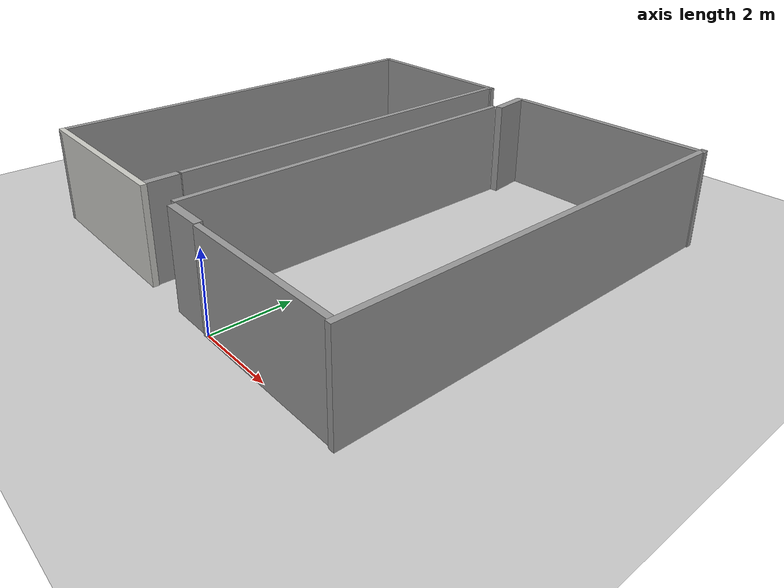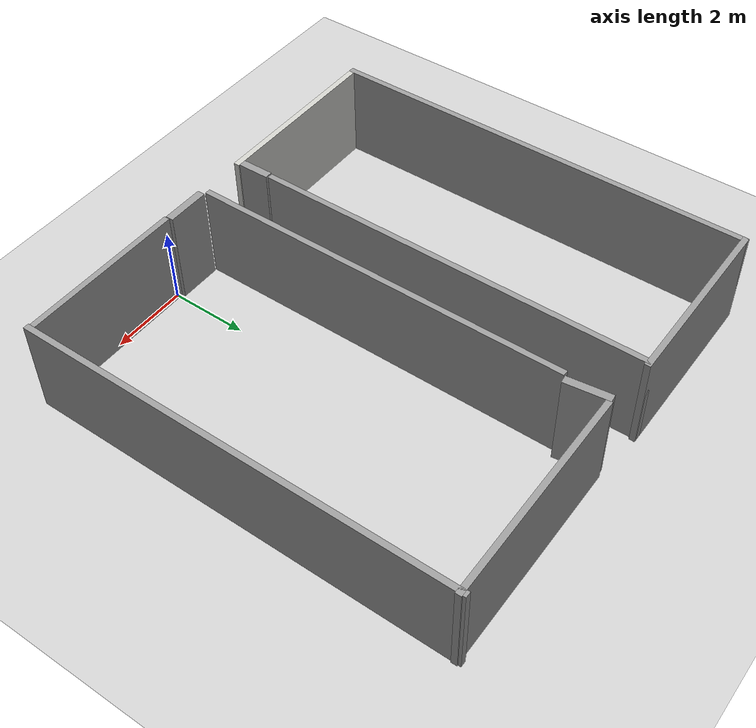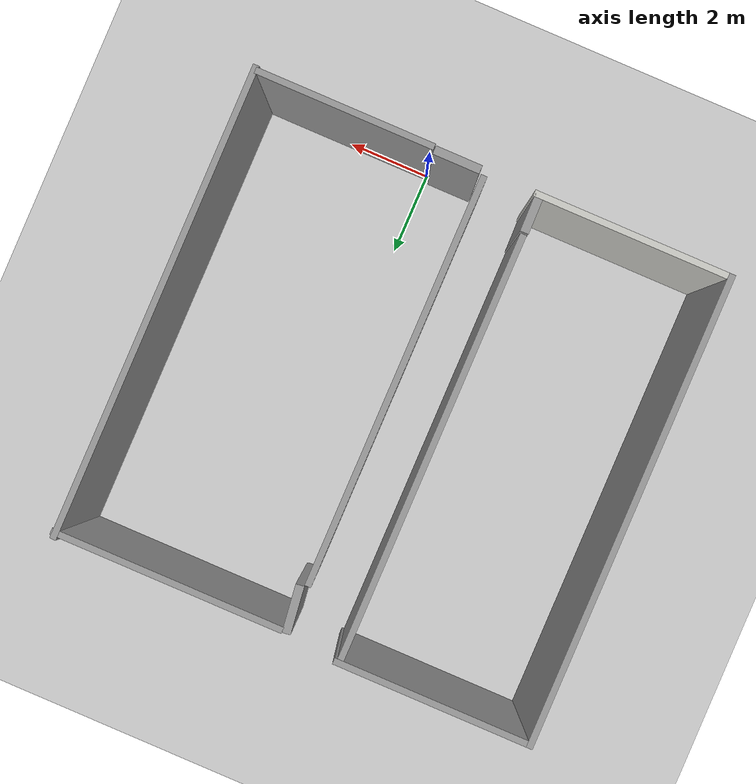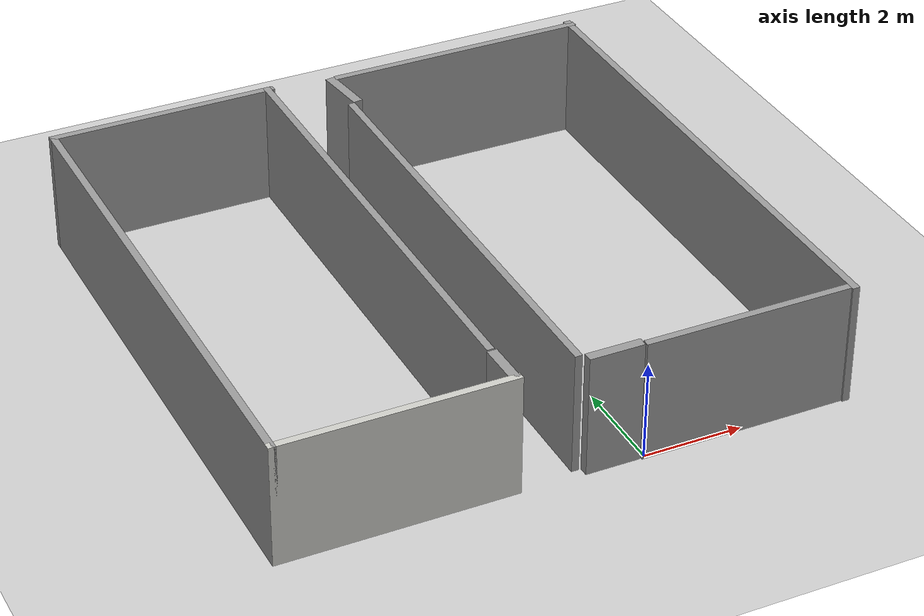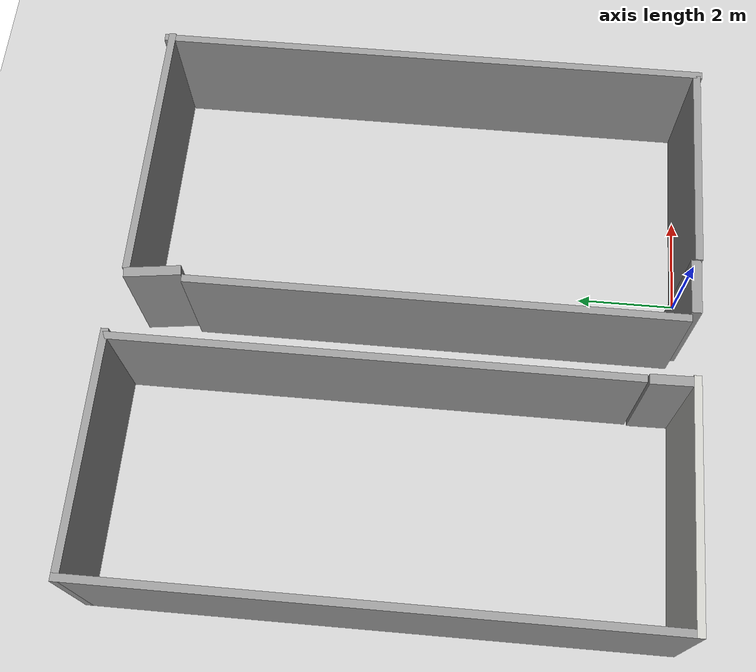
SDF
<sdf version="1.7">
 <world name="default">
  <light name="sun" type="directional">
   <pose>0 0 10 0 -0 0</pose>
   <diffuse>0.8 0.8 0.8 1</diffuse>
   <specular>0.2 0.2 0.2 1</specular>
   <attenuation>
    <range>1000</range>
    <constant>0.9</constant>
    <linear>0.01</linear>
    <quadratic>0.001</quadratic>
   </attenuation>
   <direction>-0.5 0.1 -0.9</direction>
   <spot><inner_angle>0</inner_angle><outer_angle>0</outer_angle><falloff>0</falloff></spot>
  </light>
  <model name="ground_plane">
   <static>1</static>
   <link name="link">
    <collision name="collision">
     <geometry><plane><normal>0 0 1</normal><size>100 100</size></plane></geometry>
     <surface>
      <contact><collide_bitmask>65535</collide_bitmask></contact>
      <friction><ode><mu>100</mu><mu2>50</mu2></ode></friction>
     </surface>
    </collision>
    <visual name="visual">
     <cast_shadows>0</cast_shadows>
     <geometry><plane><normal>0 0 1</normal><size>100 100</size></plane></geometry>
     <material>
      <script><uri>file://media/materials/scripts/gazebo.material</uri><name>Gazebo/Grey</name></script>
     </material>
    </visual>
   </link>
  </model>
  <gravity>0 0 -9.8</gravity>
  <magnetic_field>6e-06 2.3e-05 -4.2e-05</magnetic_field>
  <atmosphere type="adiabatic"/>
  <physics type="ode">
   <max_step_size>0.001</max_step_size>
   <real_time_factor>1</real_time_factor>
   <real_time_update_rate>1000</real_time_update_rate>
  </physics>
  <scene><ambient>0.4 0.4 0.4 1</ambient><background>0.7 0.7 0.7 1</background><shadows>1</shadows></scene>
  <audio><device>default</device></audio>
  <spherical_coordinates>
   <surface_model>EARTH_WGS84</surface_model>
   <latitude_deg>0</latitude_deg>
   <longitude_deg>0</longitude_deg>
   <elevation>0</elevation>
   <heading_deg>0</heading_deg>
  </spherical_coordinates>
  <model name="Untitled">
   <pose>-1.46512 5.56386 0 0 -0 0</pose>
   <link name="Door_3">
    <collision name="Door_3_Collision">
     <geometry><box><size>1.104 0.2 2.5</size></box></geometry>
     <pose>0 0 1.25 0 -0 0</pose>
    </collision>
    <visual name="Door_3_Visual">
     <pose>0 0 1.25 0 -0 0</pose>
     <geometry><box><size>1.104 0.2 2.5</size></box></geometry>
     <material>
      <script><uri>file://media/materials/scripts/gazebo.material</uri><name>Gazebo/Grey</name></script>
     </material>
    </visual>
    <pose>0.812821 -5.50288 0 0 -0 0</pose>
   </link>
   <link name="Door_5">
    <collision name="Door_5_Collision">
     <geometry><box><size>0.896311 0.2 2.5</size></box></geometry>
     <pose>0 0 1.25 0 -0 0</pose>
    </collision>
    <visual name="Door_5_Visual">
     <pose>0 0 1.25 0 -0 0</pose>
     <geometry><box><size>0.896311 0.2 2.5</size></box></geometry>
     <material>
      <script><uri>file://media/materials/scripts/gazebo.material</uri><name>Gazebo/Grey</name></script>
     </material>
    </visual>
    <pose>-1.14273 -5.06501 0 0 -0 1.58676</pose>
   </link>
   <link name="Door_6">
    <collision name="Door_6_Collision">
     <geometry><box><size>1.104 0.2 2.5</size></box></geometry>
     <pose>0 0 1.25 0 -0 0</pose>
    </collision>
    <visual name="Door_6_Visual">
     <pose>0 0 1.25 0 -0 0</pose>
     <geometry><box><size>1.104 0.2 2.5</size></box></geometry>
     <material>
      <script><uri>file://media/materials/scripts/gazebo.material</uri><name>Gazebo/Grey</name></script>
     </material>
    </visual>
    <pose>0.236292 4.91474 0 0 -0 1.6972</pose>
   </link>
   <link name="Wall_14">
    <collision name="Wall_14_Collision">
     <geometry><box><size>11.25 0.15 2.5</size></box></geometry>
     <pose>0 0 1.25 0 -0 0</pose>
    </collision>
    <visual name="Wall_14_Visual">
     <pose>0 0 1.25 0 -0 0</pose>
     <geometry><box><size>11.25 0.15 2.5</size></box></geometry>
     <material>
      <script><uri>file://media/materials/scripts/gazebo.material</uri><name>Gazebo/Grey</name></script>
      <ambient>1 1 1 1</ambient>
     </material>
     <meta><layer>0</layer></meta>
    </visual>
    <pose>-5.68488 0.04614 0 0 -0 -1.5708</pose>
   </link>
   <link name="Wall_15">
    <collision name="Wall_15_Collision">
     <geometry><box><size>4.75 0.15 2.5</size></box></geometry>
     <pose>0 0 1.25 0 -0 0</pose>
    </collision>
    <visual name="Wall_15_Visual">
     <pose>0 0 1.25 0 -0 0</pose>
     <geometry><box><size>4.75 0.15 2.5</size></box></geometry>
     <material>
      <script><uri>file://media/materials/scripts/gazebo.material</uri><name>Gazebo/CeilingTiled</name></script>
      <ambient>1 1 1 1</ambient>
     </material>
     <meta><layer>0</layer></meta>
    </visual>
    <pose>-3.38488 -5.50386 0 0 -0 0</pose>
   </link>
   <link name="Wall_17">
    <collision name="Wall_17_Collision">
     <geometry><box><size>4.25 0.15 2.5</size></box></geometry>
     <pose>0 0 1.25 0 -0 0</pose>
    </collision>
    <visual name="Wall_17_Visual">
     <pose>0 0 1.25 0 -0 0</pose>
     <geometry><box><size>4.25 0.15 2.5</size></box></geometry>
     <material>
      <script><uri>file://media/materials/scripts/gazebo.material</uri><name>Gazebo/Grey</name></script>
      <ambient>1 1 1 1</ambient>
     </material>
     <meta><layer>0</layer></meta>
    </visual>
    <pose>3.51091 -5.55956 0 0 -0 3.14159</pose>
   </link>
   <link name="Wall_19">
    <collision name="Wall_19_Collision">
     <geometry><box><size>11.25 0.15 2.5</size></box></geometry>
     <pose>0 0 1.25 0 -0 0</pose>
    </collision>
    <visual name="Wall_19_Visual">
     <pose>0 0 1.25 0 -0 0</pose>
     <geometry><box><size>11.25 0.15 2.5</size></box></geometry>
     <material>
      <script><uri>file://media/materials/scripts/gazebo.material</uri><name>Gazebo/Grey</name></script>
      <ambient>1 1 1 1</ambient>
     </material>
     <meta><layer>0</layer></meta>
    </visual>
    <pose>5.65617 -0.04614 0 0 -0 1.5708</pose>
   </link>
   <link name="Wall_22">
    <collision name="Wall_22_Collision">
     <geometry><box><size>9.75 0.15 2.5</size></box></geometry>
     <pose>0 0 1.25 0 -0 0</pose>
    </collision>
    <visual name="Wall_22_Visual">
     <pose>0 0 1.25 0 -0 0</pose>
     <geometry><box><size>9.75 0.15 2.5</size></box></geometry>
     <material>
      <script><uri>file://media/materials/scripts/gazebo.material</uri><name>Gazebo/Grey</name></script>
      <ambient>1 1 1 1</ambient>
     </material>
     <meta><layer>0</layer></meta>
    </visual>
    <pose>0.142148 -0.541629 0 0 -0 -1.5708</pose>
   </link>
   <link name="Wall_26">
    <collision name="Wall_26_Collision">
     <geometry><box><size>5.5 0.15 2.5</size></box></geometry>
     <pose>0 0 1.25 0 -0 0</pose>
    </collision>
    <visual name="Wall_26_Visual">
     <pose>0 0 1.25 0 -0 0</pose>
     <geometry><box><size>5.5 0.15 2.5</size></box></geometry>
     <material>
      <script><uri>file://media/materials/scripts/gazebo.material</uri><name>Gazebo/Grey</name></script>
      <ambient>1 1 1 1</ambient>
     </material>
     <meta><layer>0</layer></meta>
    </visual>
    <pose>3.00988 5.42861 0 0 -0 0</pose>
   </link>
   <link name="Wall_3">
    <collision name="Wall_3_Collision">
     <geometry><box><size>4.74345 0.15 2.5</size></box></geometry>
     <pose>0 0 1.25 0 -0 0</pose>
    </collision>
    <visual name="Wall_3_Visual">
     <pose>0 0 1.25 0 -0 0</pose>
     <geometry><box><size>4.74345 0.15 2.5</size></box></geometry>
     <material>
      <script><uri>file://media/materials/scripts/gazebo.material</uri><name>Gazebo/Grey</name></script>
      <ambient>1 1 1 1</ambient>
     </material>
     <meta><layer>0</layer></meta>
    </visual>
    <pose>-3.38816 5.59614 0 0 -0 0</pose>
   </link>
   <link name="Wall_4">
    <collision name="Wall_4_Collision">
     <geometry><box><size>10.25 0.15 2.5</size></box></geometry>
     <pose>0 0 1.25 0 -0 0</pose>
    </collision>
    <visual name="Wall_4_Visual">
     <pose>0 0 1.25 0 -0 0</pose>
     <geometry><box><size>10.25 0.15 2.5</size></box></geometry>
     <material>
      <script><uri>file://media/materials/scripts/gazebo.material</uri><name>Gazebo/Grey</name></script>
      <ambient>1 1 1 1</ambient>
     </material>
     <meta><layer>0</layer></meta>
    </visual>
    <pose>-1.15057 0.54614 0 0 -0 -1.5708</pose>
   </link>
   <static>1</static>
  </model>
 </world>
</sdf>
